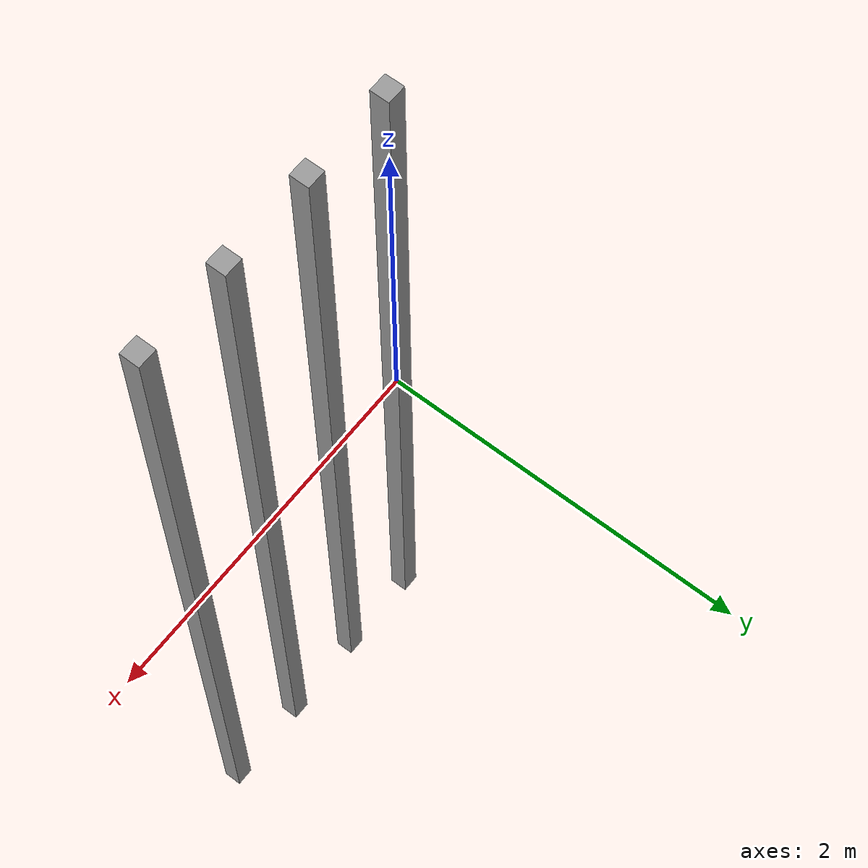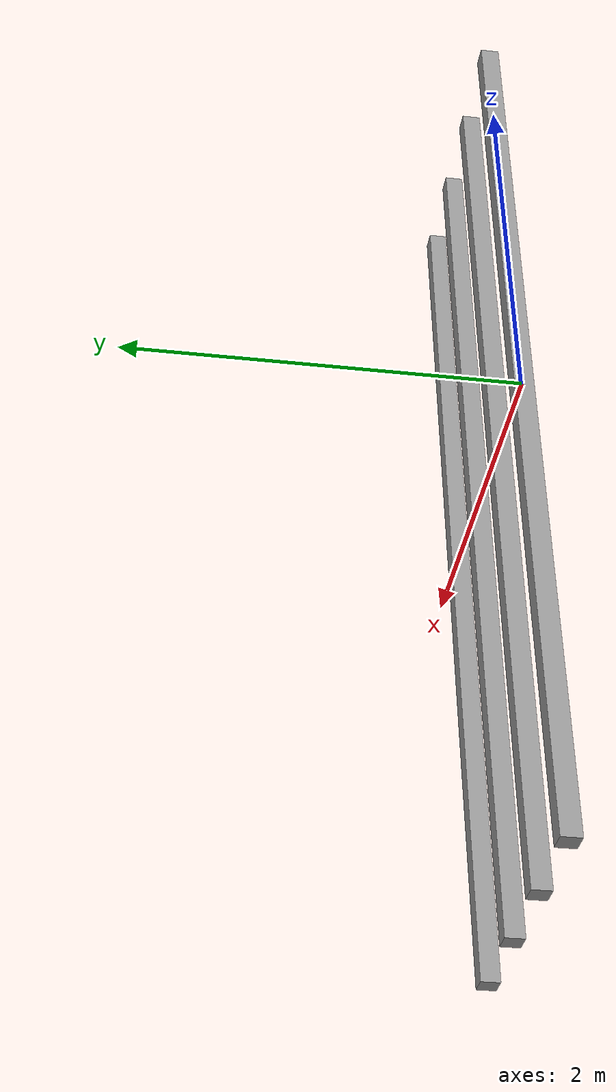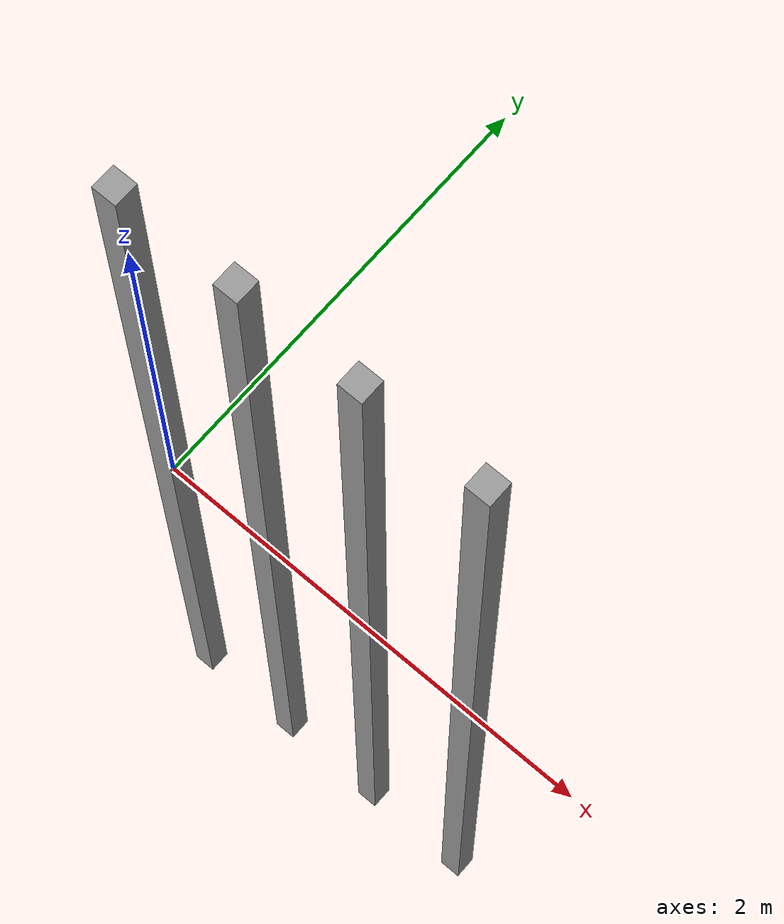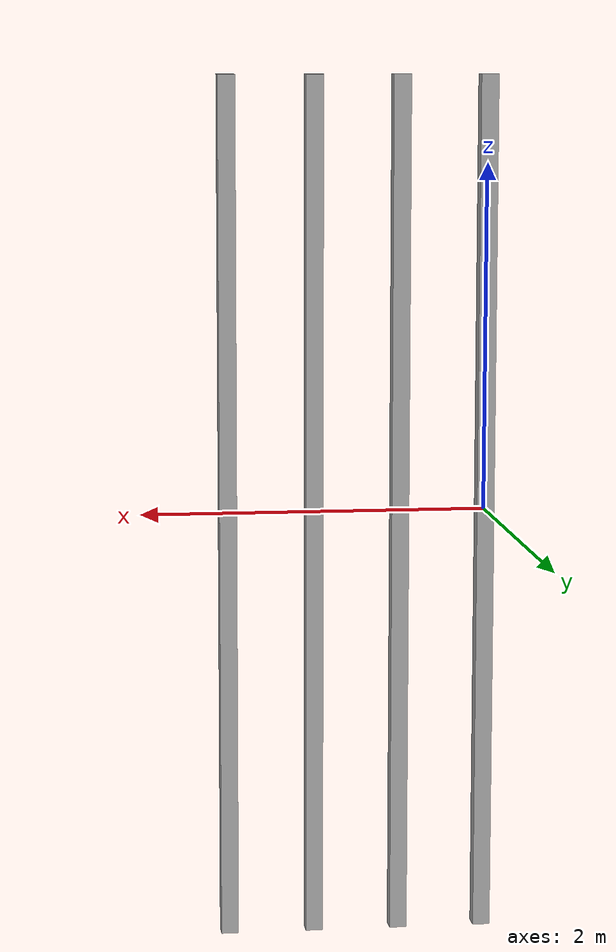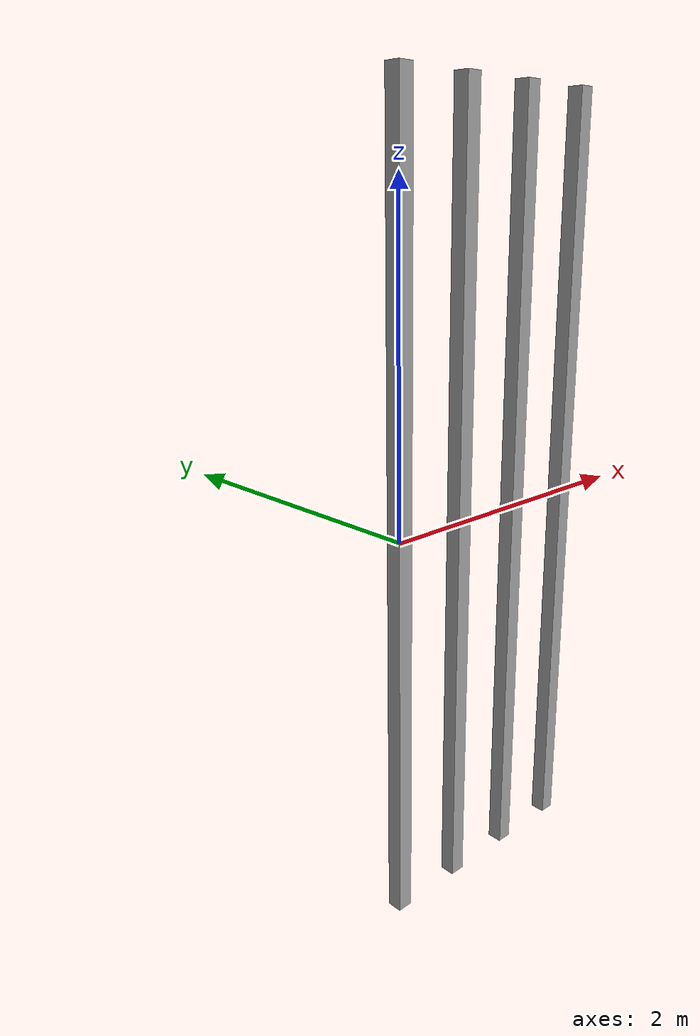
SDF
<?xml version='1.0'?>
<sdf version='1.6'>

  <model name='net'>
    <pose>0 0 0 0 0 0</pose>

    <link name='1'>
      <collision name='1'>
        <geometry>
          <box>
            <size>0.1 0.1 5</size>
          </box>
        </geometry>
        <pose frame=''>0 0 0 0 0 0</pose>
      </collision>
      <visual name='1'>
        <pose frame=''>0 0 0 0 0 0</pose>
        <geometry>
          <box>
            <size>0.1 0.1 5</size>
          </box>
        </geometry>
        <material>
          <script>
            <uri>file://media/materials/scripts/gazebo.material</uri>
            <name>Gazebo/Grey</name>
          </script>
          <ambient>1 1 1 1</ambient>
        </material>
        <meta>
          <layer>0</layer>
        </meta>
      </visual>
    </link>
    <link name='1'>
      <collision name='1'>
        <geometry>
          <box>
            <size>0.1 0.1 5</size>
          </box>
        </geometry>
        <pose frame=''>0.5 0 0 0 0 0</pose>
      </collision>
      <visual name='1'>
        <pose frame=''>0.5 0 0 0 0 0</pose>
        <geometry>
          <box>
            <size>0.1 0.1 5</size>
          </box>
        </geometry>
        <material>
          <script>
            <uri>file://media/materials/scripts/gazebo.material</uri>
            <name>Gazebo/Grey</name>
          </script>
          <ambient>1 1 1 1</ambient>
        </material>
        <meta>
          <layer>0</layer>
        </meta>
      </visual>
    </link>

    <link name='2'>
      <collision name='2'>
        <geometry>
          <box>
            <size>0.1 0.1 5</size>
          </box>
        </geometry>
        <pose frame=''>1 0 0 0 0 0</pose>
      </collision>
      <visual name='2'>
        <pose frame=''>1 0 0 0 0 0</pose>
        <geometry>
          <box>
            <size>0.1 0.1 5</size>
          </box>
        </geometry>
        <material>
          <script>
            <uri>file://media/materials/scripts/gazebo.material</uri>
            <name>Gazebo/Grey</name>
          </script>
          <ambient>1 1 1 1</ambient>
        </material>
        <meta>
          <layer>0</layer>
        </meta>
      </visual>
    </link>

    <link name='3'>
      <collision name='3'>
        <geometry>
          <box>
            <size>0.1 0.1 5</size>
          </box>
        </geometry>
        <pose frame=''>1.5 0 0 0 0 0</pose>
      </collision>
      <visual name='3'>
        <pose frame=''>1.5 0 0 0 0 0</pose>
        <geometry>
          <box>
            <size>0.1 0.1 5</size>
          </box>
        </geometry>
        <material>
          <script>
            <uri>file://media/materials/scripts/gazebo.material</uri>
            <name>Gazebo/Grey</name>
          </script>
          <ambient>1 1 1 1</ambient>
        </material>
        <meta>
          <layer>0</layer>
        </meta>
      </visual>
    </link>

    <static>1</static>
  </model>
</sdf>
